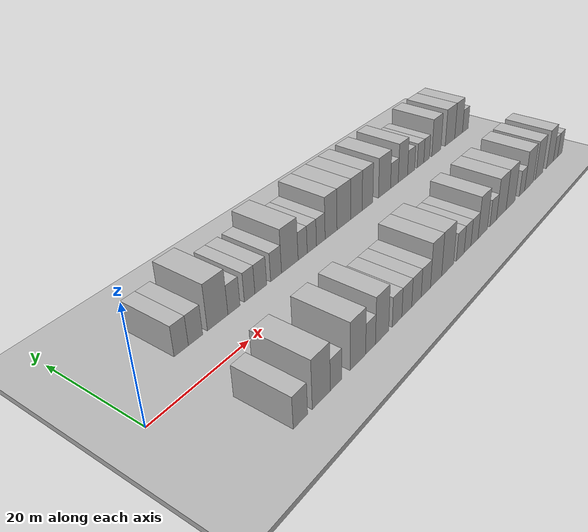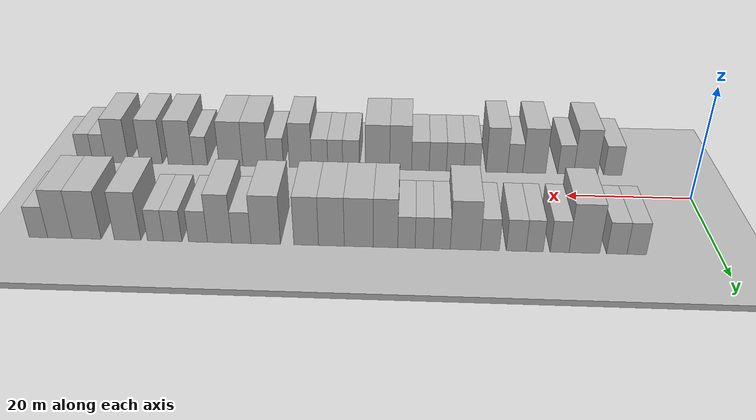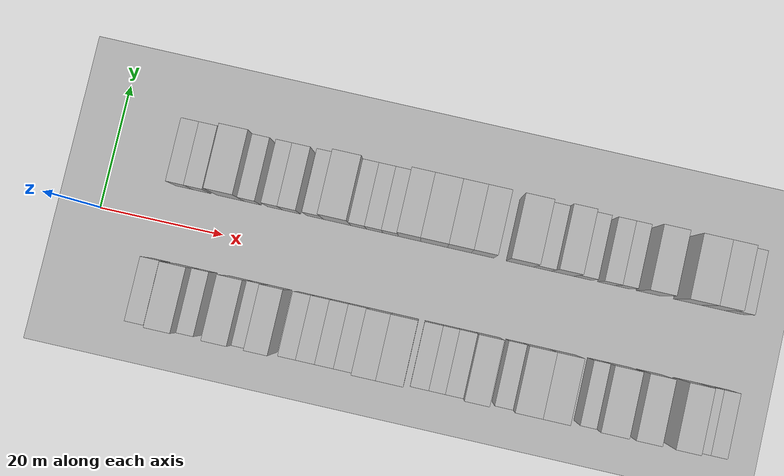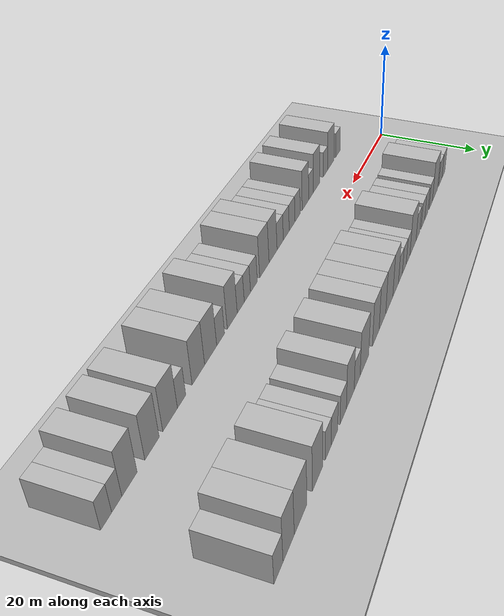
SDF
<sdf version="1.6">
 <world name="default">
  <include><name>ground_plane_1</name><uri>model://HANNAS_ground_plane</uri></include>
  <include>
   <name>ground_plane_2</name>
   <uri>model://HANNAS_ground_plane</uri>
   <pose>100 0 0  0 0 0</pose>
  </include>
  <model name="building_1">
   <static>1</static>
   <pose>12.4091 11.0000 0 0.000000 0.000000 1.570796</pose>
   <link name="link">
    <pose>0 0 3.00 0 0 0</pose>
    <collision name="collision"><geometry><box><size>10.0000 2.8182 6.0000</size></box></geometry></collision>
    <visual name="visual">
     <cast_shadows>0</cast_shadows>
     <geometry><box><size>10.0000 2.8182 6.0000</size></box></geometry>
     <material>
      <script>
       <uri>model://HANNAS_wall/materials/scripts</uri>
       <uri>model://HANNAS_wall/materials/textures</uri>
       <name>vrc/HANNAS_wall</name>
      </script>
     </material>
    </visual>
   </link>
  </model>
  <model name="building_2">
   <static>1</static>
   <pose>15.2784 11.0000 0 0.000000 0.000000 1.570796</pose>
   <link name="link">
    <pose>0 0 3.00 0 0 0</pose>
    <collision name="collision"><geometry><box><size>10.0000 2.9203 6.0000</size></box></geometry></collision>
    <visual name="visual">
     <cast_shadows>0</cast_shadows>
     <geometry><box><size>10.0000 2.9203 6.0000</size></box></geometry>
     <material>
      <script>
       <uri>model://HANNAS_wall/materials/scripts</uri>
       <uri>model://HANNAS_wall/materials/textures</uri>
       <name>vrc/HANNAS_wall</name>
      </script>
     </material>
    </visual>
   </link>
  </model>
  <model name="building_3">
   <static>1</static>
   <pose>19.9652 11.0000 0 0.000000 0.000000 1.570796</pose>
   <link name="link">
    <pose>0 0 4.50 0 0 0</pose>
    <collision name="collision"><geometry><box><size>10.0000 4.4532 9.0000</size></box></geometry></collision>
    <visual name="visual">
     <cast_shadows>0</cast_shadows>
     <geometry><box><size>10.0000 4.4532 9.0000</size></box></geometry>
     <material>
      <script>
       <uri>model://HANNAS_wall/materials/scripts</uri>
       <uri>model://HANNAS_wall/materials/textures</uri>
       <name>vrc/HANNAS_wall</name>
      </script>
     </material>
    </visual>
   </link>
  </model>
  <model name="building_4">
   <static>1</static>
   <pose>23.5626 11.0000 0 0.000000 0.000000 1.570796</pose>
   <link name="link">
    <pose>0 0 3.00 0 0 0</pose>
    <collision name="collision"><geometry><box><size>10.0000 2.7417 6.0000</size></box></geometry></collision>
    <visual name="visual">
     <cast_shadows>0</cast_shadows>
     <geometry><box><size>10.0000 2.7417 6.0000</size></box></geometry>
     <material>
      <script>
       <uri>model://HANNAS_wall/materials/scripts</uri>
       <uri>model://HANNAS_wall/materials/textures</uri>
       <name>vrc/HANNAS_wall</name>
      </script>
     </material>
    </visual>
   </link>
  </model>
  <model name="building_5">
   <static>1</static>
   <pose>27.1903 11.0000 0 0.000000 0.000000 1.570796</pose>
   <link name="link">
    <pose>0 0 3.00 0 0 0</pose>
    <collision name="collision"><geometry><box><size>10.0000 2.5137 6.0000</size></box></geometry></collision>
    <visual name="visual">
     <cast_shadows>0</cast_shadows>
     <geometry><box><size>10.0000 2.5137 6.0000</size></box></geometry>
     <material>
      <script>
       <uri>model://HANNAS_wall/materials/scripts</uri>
       <uri>model://HANNAS_wall/materials/textures</uri>
       <name>vrc/HANNAS_wall</name>
      </script>
     </material>
    </visual>
   </link>
  </model>
  <model name="building_6">
   <static>1</static>
   <pose>29.8882 11.0000 0 0.000000 0.000000 1.570796</pose>
   <link name="link">
    <pose>0 0 3.00 0 0 0</pose>
    <collision name="collision"><geometry><box><size>10.0000 2.8821 6.0000</size></box></geometry></collision>
    <visual name="visual">
     <cast_shadows>0</cast_shadows>
     <geometry><box><size>10.0000 2.8821 6.0000</size></box></geometry>
     <material>
      <script>
       <uri>model://HANNAS_wall/materials/scripts</uri>
       <uri>model://HANNAS_wall/materials/textures</uri>
       <name>vrc/HANNAS_wall</name>
      </script>
     </material>
    </visual>
   </link>
  </model>
  <model name="building_7">
   <static>1</static>
   <pose>33.7209 11.0000 0 0.000000 0.000000 1.570796</pose>
   <link name="link">
    <pose>0 0 3.00 0 0 0</pose>
    <collision name="collision"><geometry><box><size>10.0000 2.7834 6.0000</size></box></geometry></collision>
    <visual name="visual">
     <cast_shadows>0</cast_shadows>
     <geometry><box><size>10.0000 2.7834 6.0000</size></box></geometry>
     <material>
      <script>
       <uri>model://HANNAS_wall/materials/scripts</uri>
       <uri>model://HANNAS_wall/materials/textures</uri>
       <name>vrc/HANNAS_wall</name>
      </script>
     </material>
    </visual>
   </link>
  </model>
  <model name="building_8">
   <static>1</static>
   <pose>37.3267 11.0000 0 0.000000 0.000000 1.570796</pose>
   <link name="link">
    <pose>0 0 4.50 0 0 0</pose>
    <collision name="collision"><geometry><box><size>10.0000 4.4282 9.0000</size></box></geometry></collision>
    <visual name="visual">
     <cast_shadows>0</cast_shadows>
     <geometry><box><size>10.0000 4.4282 9.0000</size></box></geometry>
     <material>
      <script>
       <uri>model://HANNAS_wall/materials/scripts</uri>
       <uri>model://HANNAS_wall/materials/textures</uri>
       <name>vrc/HANNAS_wall</name>
      </script>
     </material>
    </visual>
   </link>
  </model>
  <model name="building_9">
   <static>1</static>
   <pose>40.8081 11.0000 0 0.000000 0.000000 1.570796</pose>
   <link name="link">
    <pose>0 0 3.00 0 0 0</pose>
    <collision name="collision"><geometry><box><size>10.0000 2.5346 6.0000</size></box></geometry></collision>
    <visual name="visual">
     <cast_shadows>0</cast_shadows>
     <geometry><box><size>10.0000 2.5346 6.0000</size></box></geometry>
     <material>
      <script>
       <uri>model://HANNAS_wall/materials/scripts</uri>
       <uri>model://HANNAS_wall/materials/textures</uri>
       <name>vrc/HANNAS_wall</name>
      </script>
     </material>
    </visual>
   </link>
  </model>
  <model name="building_10">
   <static>1</static>
   <pose>43.3943 11.0000 0 0.000000 0.000000 1.570796</pose>
   <link name="link">
    <pose>0 0 3.00 0 0 0</pose>
    <collision name="collision"><geometry><box><size>10.0000 2.6378 6.0000</size></box></geometry></collision>
    <visual name="visual">
     <cast_shadows>0</cast_shadows>
     <geometry><box><size>10.0000 2.6378 6.0000</size></box></geometry>
     <material>
      <script>
       <uri>model://HANNAS_wall/materials/scripts</uri>
       <uri>model://HANNAS_wall/materials/textures</uri>
       <name>vrc/HANNAS_wall</name>
      </script>
     </material>
    </visual>
   </link>
  </model>
  <model name="building_11">
   <static>1</static>
   <pose>45.9849 11.0000 0 0.000000 0.000000 1.570796</pose>
   <link name="link">
    <pose>0 0 3.00 0 0 0</pose>
    <collision name="collision"><geometry><box><size>10.0000 2.5434 6.0000</size></box></geometry></collision>
    <visual name="visual">
     <cast_shadows>0</cast_shadows>
     <geometry><box><size>10.0000 2.5434 6.0000</size></box></geometry>
     <material>
      <script>
       <uri>model://HANNAS_wall/materials/scripts</uri>
       <uri>model://HANNAS_wall/materials/textures</uri>
       <name>vrc/HANNAS_wall</name>
      </script>
     </material>
    </visual>
   </link>
  </model>
  <model name="building_12">
   <static>1</static>
   <pose>49.0629 11.0000 0 0.000000 0.000000 1.570796</pose>
   <link name="link">
    <pose>0 0 4.50 0 0 0</pose>
    <collision name="collision"><geometry><box><size>10.0000 3.6127 9.0000</size></box></geometry></collision>
    <visual name="visual">
     <cast_shadows>0</cast_shadows>
     <geometry><box><size>10.0000 3.6127 9.0000</size></box></geometry>
     <material>
      <script>
       <uri>model://HANNAS_wall/materials/scripts</uri>
       <uri>model://HANNAS_wall/materials/textures</uri>
       <name>vrc/HANNAS_wall</name>
      </script>
     </material>
    </visual>
   </link>
  </model>
  <model name="building_13">
   <static>1</static>
   <pose>53.0228 11.0000 0 0.000000 0.000000 1.570796</pose>
   <link name="link">
    <pose>0 0 4.50 0 0 0</pose>
    <collision name="collision"><geometry><box><size>10.0000 4.3072 9.0000</size></box></geometry></collision>
    <visual name="visual">
     <cast_shadows>0</cast_shadows>
     <geometry><box><size>10.0000 4.3072 9.0000</size></box></geometry>
     <material>
      <script>
       <uri>model://HANNAS_wall/materials/scripts</uri>
       <uri>model://HANNAS_wall/materials/textures</uri>
       <name>vrc/HANNAS_wall</name>
      </script>
     </material>
    </visual>
   </link>
  </model>
  <model name="building_14">
   <static>1</static>
   <pose>57.0884 11.0000 0 0.000000 0.000000 1.570796</pose>
   <link name="link">
    <pose>0 0 4.50 0 0 0</pose>
    <collision name="collision"><geometry><box><size>10.0000 3.8240 9.0000</size></box></geometry></collision>
    <visual name="visual">
     <cast_shadows>0</cast_shadows>
     <geometry><box><size>10.0000 3.8240 9.0000</size></box></geometry>
     <material>
      <script>
       <uri>model://HANNAS_wall/materials/scripts</uri>
       <uri>model://HANNAS_wall/materials/textures</uri>
       <name>vrc/HANNAS_wall</name>
      </script>
     </material>
    </visual>
   </link>
  </model>
  <model name="building_15">
   <static>1</static>
   <pose>60.8358 11.0000 0 0.000000 0.000000 1.570796</pose>
   <link name="link">
    <pose>0 0 4.50 0 0 0</pose>
    <collision name="collision"><geometry><box><size>10.0000 3.6707 9.0000</size></box></geometry></collision>
    <visual name="visual">
     <cast_shadows>0</cast_shadows>
     <geometry><box><size>10.0000 3.6707 9.0000</size></box></geometry>
     <material>
      <script>
       <uri>model://HANNAS_wall/materials/scripts</uri>
       <uri>model://HANNAS_wall/materials/textures</uri>
       <name>vrc/HANNAS_wall</name>
      </script>
     </material>
    </visual>
   </link>
  </model>
  <model name="building_16">
   <static>1</static>
   <pose>66.8701 11.0000 0 0.000000 0.000000 1.570796</pose>
   <link name="link">
    <pose>0 0 4.50 0 0 0</pose>
    <collision name="collision"><geometry><box><size>10.0000 4.3979 9.0000</size></box></geometry></collision>
    <visual name="visual">
     <cast_shadows>0</cast_shadows>
     <geometry><box><size>10.0000 4.3979 9.0000</size></box></geometry>
     <material>
      <script>
       <uri>model://HANNAS_wall/materials/scripts</uri>
       <uri>model://HANNAS_wall/materials/textures</uri>
       <name>vrc/HANNAS_wall</name>
      </script>
     </material>
    </visual>
   </link>
  </model>
  <model name="building_17">
   <static>1</static>
   <pose>70.5187 11.0000 0 0.000000 0.000000 1.570796</pose>
   <link name="link">
    <pose>0 0 3.00 0 0 0</pose>
    <collision name="collision"><geometry><box><size>10.0000 2.8995 6.0000</size></box></geometry></collision>
    <visual name="visual">
     <cast_shadows>0</cast_shadows>
     <geometry><box><size>10.0000 2.8995 6.0000</size></box></geometry>
     <material>
      <script>
       <uri>model://HANNAS_wall/materials/scripts</uri>
       <uri>model://HANNAS_wall/materials/textures</uri>
       <name>vrc/HANNAS_wall</name>
      </script>
     </material>
    </visual>
   </link>
  </model>
  <model name="building_18">
   <static>1</static>
   <pose>73.7836 11.0000 0 0.000000 0.000000 1.570796</pose>
   <link name="link">
    <pose>0 0 4.50 0 0 0</pose>
    <collision name="collision"><geometry><box><size>10.0000 3.6303 9.0000</size></box></geometry></collision>
    <visual name="visual">
     <cast_shadows>0</cast_shadows>
     <geometry><box><size>10.0000 3.6303 9.0000</size></box></geometry>
     <material>
      <script>
       <uri>model://HANNAS_wall/materials/scripts</uri>
       <uri>model://HANNAS_wall/materials/textures</uri>
       <name>vrc/HANNAS_wall</name>
      </script>
     </material>
    </visual>
   </link>
  </model>
  <model name="building_19">
   <static>1</static>
   <pose>77.0267 11.0000 0 0.000000 0.000000 1.570796</pose>
   <link name="link">
    <pose>0 0 3.00 0 0 0</pose>
    <collision name="collision"><geometry><box><size>10.0000 2.8559 6.0000</size></box></geometry></collision>
    <visual name="visual">
     <cast_shadows>0</cast_shadows>
     <geometry><box><size>10.0000 2.8559 6.0000</size></box></geometry>
     <material>
      <script>
       <uri>model://HANNAS_wall/materials/scripts</uri>
       <uri>model://HANNAS_wall/materials/textures</uri>
       <name>vrc/HANNAS_wall</name>
      </script>
     </material>
    </visual>
   </link>
  </model>
  <model name="building_20">
   <static>1</static>
   <pose>80.8412 11.0000 0 0.000000 0.000000 1.570796</pose>
   <link name="link">
    <pose>0 0 3.00 0 0 0</pose>
    <collision name="collision"><geometry><box><size>10.0000 2.7729 6.0000</size></box></geometry></collision>
    <visual name="visual">
     <cast_shadows>0</cast_shadows>
     <geometry><box><size>10.0000 2.7729 6.0000</size></box></geometry>
     <material>
      <script>
       <uri>model://HANNAS_wall/materials/scripts</uri>
       <uri>model://HANNAS_wall/materials/textures</uri>
       <name>vrc/HANNAS_wall</name>
      </script>
     </material>
    </visual>
   </link>
  </model>
  <model name="building_21">
   <static>1</static>
   <pose>83.4422 11.0000 0 0.000000 0.000000 1.570796</pose>
   <link name="link">
    <pose>0 0 3.00 0 0 0</pose>
    <collision name="collision"><geometry><box><size>10.0000 2.4292 6.0000</size></box></geometry></collision>
    <visual name="visual">
     <cast_shadows>0</cast_shadows>
     <geometry><box><size>10.0000 2.4292 6.0000</size></box></geometry>
     <material>
      <script>
       <uri>model://HANNAS_wall/materials/scripts</uri>
       <uri>model://HANNAS_wall/materials/textures</uri>
       <name>vrc/HANNAS_wall</name>
      </script>
     </material>
    </visual>
   </link>
  </model>
  <model name="building_22">
   <static>1</static>
   <pose>87.6706 11.0000 0 0.000000 0.000000 1.570796</pose>
   <link name="link">
    <pose>0 0 4.50 0 0 0</pose>
    <collision name="collision"><geometry><box><size>10.0000 4.0277 9.0000</size></box></geometry></collision>
    <visual name="visual">
     <cast_shadows>0</cast_shadows>
     <geometry><box><size>10.0000 4.0277 9.0000</size></box></geometry>
     <material>
      <script>
       <uri>model://HANNAS_wall/materials/scripts</uri>
       <uri>model://HANNAS_wall/materials/textures</uri>
       <name>vrc/HANNAS_wall</name>
      </script>
     </material>
    </visual>
   </link>
  </model>
  <model name="building_23">
   <static>1</static>
   <pose>93.8970 11.0000 0 0.000000 0.000000 1.570796</pose>
   <link name="link">
    <pose>0 0 4.50 0 0 0</pose>
    <collision name="collision"><geometry><box><size>10.0000 4.4251 9.0000</size></box></geometry></collision>
    <visual name="visual">
     <cast_shadows>0</cast_shadows>
     <geometry><box><size>10.0000 4.4251 9.0000</size></box></geometry>
     <material>
      <script>
       <uri>model://HANNAS_wall/materials/scripts</uri>
       <uri>model://HANNAS_wall/materials/textures</uri>
       <name>vrc/HANNAS_wall</name>
      </script>
     </material>
    </visual>
   </link>
  </model>
  <model name="building_24">
   <static>1</static>
   <pose>97.9638 11.0000 0 0.000000 0.000000 1.570796</pose>
   <link name="link">
    <pose>0 0 4.50 0 0 0</pose>
    <collision name="collision"><geometry><box><size>10.0000 3.7085 9.0000</size></box></geometry></collision>
    <visual name="visual">
     <cast_shadows>0</cast_shadows>
     <geometry><box><size>10.0000 3.7085 9.0000</size></box></geometry>
     <material>
      <script>
       <uri>model://HANNAS_wall/materials/scripts</uri>
       <uri>model://HANNAS_wall/materials/textures</uri>
       <name>vrc/HANNAS_wall</name>
      </script>
     </material>
    </visual>
   </link>
  </model>
  <model name="building_25">
   <static>1</static>
   <pose>101.2395 11.0000 0 0.000000 0.000000 1.570796</pose>
   <link name="link">
    <pose>0 0 3.00 0 0 0</pose>
    <collision name="collision"><geometry><box><size>10.0000 2.8429 6.0000</size></box></geometry></collision>
    <visual name="visual">
     <cast_shadows>0</cast_shadows>
     <geometry><box><size>10.0000 2.8429 6.0000</size></box></geometry>
     <material>
      <script>
       <uri>model://HANNAS_wall/materials/scripts</uri>
       <uri>model://HANNAS_wall/materials/textures</uri>
       <name>vrc/HANNAS_wall</name>
      </script>
     </material>
    </visual>
   </link>
  </model>
  <model name="building_51">
   <static>1</static>
   <pose>11.4990 -11.0000 0 0.000000 0.000000 1.570796</pose>
   <link name="link">
    <pose>0 0 3.00 0 0 0</pose>
    <collision name="collision"><geometry><box><size>10.0000 2.9979 6.0000</size></box></geometry></collision>
    <visual name="visual">
     <cast_shadows>0</cast_shadows>
     <geometry><box><size>10.0000 2.9979 6.0000</size></box></geometry>
     <material>
      <script>
       <uri>model://HANNAS_wall/materials/scripts</uri>
       <uri>model://HANNAS_wall/materials/textures</uri>
       <name>vrc/HANNAS_wall</name>
      </script>
     </material>
    </visual>
   </link>
  </model>
  <model name="building_52">
   <static>1</static>
   <pose>16.0169 -11.0000 0 0.000000 0.000000 1.570796</pose>
   <link name="link">
    <pose>0 0 4.50 0 0 0</pose>
    <collision name="collision"><geometry><box><size>10.0000 4.0380 9.0000</size></box></geometry></collision>
    <visual name="visual">
     <cast_shadows>0</cast_shadows>
     <geometry><box><size>10.0000 4.0380 9.0000</size></box></geometry>
     <material>
      <script>
       <uri>model://HANNAS_wall/materials/scripts</uri>
       <uri>model://HANNAS_wall/materials/textures</uri>
       <name>vrc/HANNAS_wall</name>
      </script>
     </material>
    </visual>
   </link>
  </model>
  <model name="building_53">
   <static>1</static>
   <pose>19.3747 -11.0000 0 0.000000 0.000000 1.570796</pose>
   <link name="link">
    <pose>0 0 3.00 0 0 0</pose>
    <collision name="collision"><geometry><box><size>10.0000 2.6776 6.0000</size></box></geometry></collision>
    <visual name="visual">
     <cast_shadows>0</cast_shadows>
     <geometry><box><size>10.0000 2.6776 6.0000</size></box></geometry>
     <material>
      <script>
       <uri>model://HANNAS_wall/materials/scripts</uri>
       <uri>model://HANNAS_wall/materials/textures</uri>
       <name>vrc/HANNAS_wall</name>
      </script>
     </material>
    </visual>
   </link>
  </model>
  <model name="building_54">
   <static>1</static>
   <pose>24.6554 -11.0000 0 0.000000 0.000000 1.570796</pose>
   <link name="link">
    <pose>0 0 4.50 0 0 0</pose>
    <collision name="collision"><geometry><box><size>10.0000 3.8837 9.0000</size></box></geometry></collision>
    <visual name="visual">
     <cast_shadows>0</cast_shadows>
     <geometry><box><size>10.0000 3.8837 9.0000</size></box></geometry>
     <material>
      <script>
       <uri>model://HANNAS_wall/materials/scripts</uri>
       <uri>model://HANNAS_wall/materials/textures</uri>
       <name>vrc/HANNAS_wall</name>
      </script>
     </material>
    </visual>
   </link>
  </model>
  <model name="building_55">
   <static>1</static>
   <pose>27.8798 -11.0000 0 0.000000 0.000000 1.570796</pose>
   <link name="link">
    <pose>0 0 3.00 0 0 0</pose>
    <collision name="collision"><geometry><box><size>10.0000 2.5652 6.0000</size></box></geometry></collision>
    <visual name="visual">
     <cast_shadows>0</cast_shadows>
     <geometry><box><size>10.0000 2.5652 6.0000</size></box></geometry>
     <material>
      <script>
       <uri>model://HANNAS_wall/materials/scripts</uri>
       <uri>model://HANNAS_wall/materials/textures</uri>
       <name>vrc/HANNAS_wall</name>
      </script>
     </material>
    </visual>
   </link>
  </model>
  <model name="building_56">
   <static>1</static>
   <pose>30.9660 -11.0000 0 0.000000 0.000000 1.570796</pose>
   <link name="link">
    <pose>0 0 4.50 0 0 0</pose>
    <collision name="collision"><geometry><box><size>10.0000 3.6073 9.0000</size></box></geometry></collision>
    <visual name="visual">
     <cast_shadows>0</cast_shadows>
     <geometry><box><size>10.0000 3.6073 9.0000</size></box></geometry>
     <material>
      <script>
       <uri>model://HANNAS_wall/materials/scripts</uri>
       <uri>model://HANNAS_wall/materials/textures</uri>
       <name>vrc/HANNAS_wall</name>
      </script>
     </material>
    </visual>
   </link>
  </model>
  <model name="building_57">
   <static>1</static>
   <pose>35.1552 -11.0000 0 0.000000 0.000000 1.570796</pose>
   <link name="link">
    <pose>0 0 3.00 0 0 0</pose>
    <collision name="collision"><geometry><box><size>10.0000 2.7711 6.0000</size></box></geometry></collision>
    <visual name="visual">
     <cast_shadows>0</cast_shadows>
     <geometry><box><size>10.0000 2.7711 6.0000</size></box></geometry>
     <material>
      <script>
       <uri>model://HANNAS_wall/materials/scripts</uri>
       <uri>model://HANNAS_wall/materials/textures</uri>
       <name>vrc/HANNAS_wall</name>
      </script>
     </material>
    </visual>
   </link>
  </model>
  <model name="building_58">
   <static>1</static>
   <pose>38.0108 -11.0000 0 0.000000 0.000000 1.570796</pose>
   <link name="link">
    <pose>0 0 3.00 0 0 0</pose>
    <collision name="collision"><geometry><box><size>10.0000 2.9401 6.0000</size></box></geometry></collision>
    <visual name="visual">
     <cast_shadows>0</cast_shadows>
     <geometry><box><size>10.0000 2.9401 6.0000</size></box></geometry>
     <material>
      <script>
       <uri>model://HANNAS_wall/materials/scripts</uri>
       <uri>model://HANNAS_wall/materials/textures</uri>
       <name>vrc/HANNAS_wall</name>
      </script>
     </material>
    </visual>
   </link>
  </model>
  <model name="building_59">
   <static>1</static>
   <pose>40.9382 -11.0000 0 0.000000 0.000000 1.570796</pose>
   <link name="link">
    <pose>0 0 3.00 0 0 0</pose>
    <collision name="collision"><geometry><box><size>10.0000 2.9147 6.0000</size></box></geometry></collision>
    <visual name="visual">
     <cast_shadows>0</cast_shadows>
     <geometry><box><size>10.0000 2.9147 6.0000</size></box></geometry>
     <material>
      <script>
       <uri>model://HANNAS_wall/materials/scripts</uri>
       <uri>model://HANNAS_wall/materials/textures</uri>
       <name>vrc/HANNAS_wall</name>
      </script>
     </material>
    </visual>
   </link>
  </model>
  <model name="building_60">
   <static>1</static>
   <pose>43.8944 -11.0000 0 0.000000 0.000000 1.570796</pose>
   <link name="link">
    <pose>0 0 3.00 0 0 0</pose>
    <collision name="collision"><geometry><box><size>10.0000 2.9977 6.0000</size></box></geometry></collision>
    <visual name="visual">
     <cast_shadows>0</cast_shadows>
     <geometry><box><size>10.0000 2.9977 6.0000</size></box></geometry>
     <material>
      <script>
       <uri>model://HANNAS_wall/materials/scripts</uri>
       <uri>model://HANNAS_wall/materials/textures</uri>
       <name>vrc/HANNAS_wall</name>
      </script>
     </material>
    </visual>
   </link>
  </model>
  <model name="building_61">
   <static>1</static>
   <pose>47.2454 -11.0000 0 0.000000 0.000000 1.570796</pose>
   <link name="link">
    <pose>0 0 4.50 0 0 0</pose>
    <collision name="collision"><geometry><box><size>10.0000 3.7042 9.0000</size></box></geometry></collision>
    <visual name="visual">
     <cast_shadows>0</cast_shadows>
     <geometry><box><size>10.0000 3.7042 9.0000</size></box></geometry>
     <material>
      <script>
       <uri>model://HANNAS_wall/materials/scripts</uri>
       <uri>model://HANNAS_wall/materials/textures</uri>
       <name>vrc/HANNAS_wall</name>
      </script>
     </material>
    </visual>
   </link>
  </model>
  <model name="building_62">
   <static>1</static>
   <pose>51.1810 -11.0000 0 0.000000 0.000000 1.570796</pose>
   <link name="link">
    <pose>0 0 4.50 0 0 0</pose>
    <collision name="collision"><geometry><box><size>10.0000 4.1671 9.0000</size></box></geometry></collision>
    <visual name="visual">
     <cast_shadows>0</cast_shadows>
     <geometry><box><size>10.0000 4.1671 9.0000</size></box></geometry>
     <material>
      <script>
       <uri>model://HANNAS_wall/materials/scripts</uri>
       <uri>model://HANNAS_wall/materials/textures</uri>
       <name>vrc/HANNAS_wall</name>
      </script>
     </material>
    </visual>
   </link>
  </model>
  <model name="building_63">
   <static>1</static>
   <pose>55.6954 -11.0000 0 0.000000 0.000000 1.570796</pose>
   <link name="link">
    <pose>0 0 3.00 0 0 0</pose>
    <collision name="collision"><geometry><box><size>10.0000 2.8615 6.0000</size></box></geometry></collision>
    <visual name="visual">
     <cast_shadows>0</cast_shadows>
     <geometry><box><size>10.0000 2.8615 6.0000</size></box></geometry>
     <material>
      <script>
       <uri>model://HANNAS_wall/materials/scripts</uri>
       <uri>model://HANNAS_wall/materials/textures</uri>
       <name>vrc/HANNAS_wall</name>
      </script>
     </material>
    </visual>
   </link>
  </model>
  <model name="building_64">
   <static>1</static>
   <pose>58.4050 -11.0000 0 0.000000 0.000000 1.570796</pose>
   <link name="link">
    <pose>0 0 3.00 0 0 0</pose>
    <collision name="collision"><geometry><box><size>10.0000 2.5578 6.0000</size></box></geometry></collision>
    <visual name="visual">
     <cast_shadows>0</cast_shadows>
     <geometry><box><size>10.0000 2.5578 6.0000</size></box></geometry>
     <material>
      <script>
       <uri>model://HANNAS_wall/materials/scripts</uri>
       <uri>model://HANNAS_wall/materials/textures</uri>
       <name>vrc/HANNAS_wall</name>
      </script>
     </material>
    </visual>
   </link>
  </model>
  <model name="building_65">
   <static>1</static>
   <pose>61.0790 -11.0000 0 0.000000 0.000000 1.570796</pose>
   <link name="link">
    <pose>0 0 3.00 0 0 0</pose>
    <collision name="collision"><geometry><box><size>10.0000 2.7903 6.0000</size></box></geometry></collision>
    <visual name="visual">
     <cast_shadows>0</cast_shadows>
     <geometry><box><size>10.0000 2.7903 6.0000</size></box></geometry>
     <material>
      <script>
       <uri>model://HANNAS_wall/materials/scripts</uri>
       <uri>model://HANNAS_wall/materials/textures</uri>
       <name>vrc/HANNAS_wall</name>
      </script>
     </material>
    </visual>
   </link>
  </model>
  <model name="building_66">
   <static>1</static>
   <pose>64.3800 -11.0000 0 0.000000 0.000000 1.570796</pose>
   <link name="link">
    <pose>0 0 4.50 0 0 0</pose>
    <collision name="collision"><geometry><box><size>10.0000 3.8116 9.0000</size></box></geometry></collision>
    <visual name="visual">
     <cast_shadows>0</cast_shadows>
     <geometry><box><size>10.0000 3.8116 9.0000</size></box></geometry>
     <material>
      <script>
       <uri>model://HANNAS_wall/materials/scripts</uri>
       <uri>model://HANNAS_wall/materials/textures</uri>
       <name>vrc/HANNAS_wall</name>
      </script>
     </material>
    </visual>
   </link>
  </model>
  <model name="building_67">
   <static>1</static>
   <pose>68.6975 -11.0000 0 0.000000 0.000000 1.570796</pose>
   <link name="link">
    <pose>0 0 3.00 0 0 0</pose>
    <collision name="collision"><geometry><box><size>10.0000 2.8234 6.0000</size></box></geometry></collision>
    <visual name="visual">
     <cast_shadows>0</cast_shadows>
     <geometry><box><size>10.0000 2.8234 6.0000</size></box></geometry>
     <material>
      <script>
       <uri>model://HANNAS_wall/materials/scripts</uri>
       <uri>model://HANNAS_wall/materials/textures</uri>
       <name>vrc/HANNAS_wall</name>
      </script>
     </material>
    </visual>
   </link>
  </model>
  <model name="building_68">
   <static>1</static>
   <pose>72.1998 -11.0000 0 0.000000 0.000000 1.570796</pose>
   <link name="link">
    <pose>0 0 4.50 0 0 0</pose>
    <collision name="collision"><geometry><box><size>10.0000 4.1812 9.0000</size></box></geometry></collision>
    <visual name="visual">
     <cast_shadows>0</cast_shadows>
     <geometry><box><size>10.0000 4.1812 9.0000</size></box></geometry>
     <material>
      <script>
       <uri>model://HANNAS_wall/materials/scripts</uri>
       <uri>model://HANNAS_wall/materials/textures</uri>
       <name>vrc/HANNAS_wall</name>
      </script>
     </material>
    </visual>
   </link>
  </model>
  <model name="building_69">
   <static>1</static>
   <pose>76.3527 -11.0000 0 0.000000 0.000000 1.570796</pose>
   <link name="link">
    <pose>0 0 4.50 0 0 0</pose>
    <collision name="collision"><geometry><box><size>10.0000 4.1246 9.0000</size></box></geometry></collision>
    <visual name="visual">
     <cast_shadows>0</cast_shadows>
     <geometry><box><size>10.0000 4.1246 9.0000</size></box></geometry>
     <material>
      <script>
       <uri>model://HANNAS_wall/materials/scripts</uri>
       <uri>model://HANNAS_wall/materials/textures</uri>
       <name>vrc/HANNAS_wall</name>
      </script>
     </material>
    </visual>
   </link>
  </model>
  <model name="building_70">
   <static>1</static>
   <pose>81.6901 -11.0000 0 0.000000 0.000000 1.570796</pose>
   <link name="link">
    <pose>0 0 3.00 0 0 0</pose>
    <collision name="collision"><geometry><box><size>10.0000 2.5503 6.0000</size></box></geometry></collision>
    <visual name="visual">
     <cast_shadows>0</cast_shadows>
     <geometry><box><size>10.0000 2.5503 6.0000</size></box></geometry>
     <material>
      <script>
       <uri>model://HANNAS_wall/materials/scripts</uri>
       <uri>model://HANNAS_wall/materials/textures</uri>
       <name>vrc/HANNAS_wall</name>
      </script>
     </material>
    </visual>
   </link>
  </model>
  <model name="building_71">
   <static>1</static>
   <pose>85.1099 -11.0000 0 0.000000 0.000000 1.570796</pose>
   <link name="link">
    <pose>0 0 4.50 0 0 0</pose>
    <collision name="collision"><geometry><box><size>10.0000 4.2893 9.0000</size></box></geometry></collision>
    <visual name="visual">
     <cast_shadows>0</cast_shadows>
     <geometry><box><size>10.0000 4.2893 9.0000</size></box></geometry>
     <material>
      <script>
       <uri>model://HANNAS_wall/materials/scripts</uri>
       <uri>model://HANNAS_wall/materials/textures</uri>
       <name>vrc/HANNAS_wall</name>
      </script>
     </material>
    </visual>
   </link>
  </model>
  <model name="building_72">
   <static>1</static>
   <pose>90.2159 -11.0000 0 0.000000 0.000000 1.570796</pose>
   <link name="link">
    <pose>0 0 4.50 0 0 0</pose>
    <collision name="collision"><geometry><box><size>10.0000 3.9227 9.0000</size></box></geometry></collision>
    <visual name="visual">
     <cast_shadows>0</cast_shadows>
     <geometry><box><size>10.0000 3.9227 9.0000</size></box></geometry>
     <material>
      <script>
       <uri>model://HANNAS_wall/materials/scripts</uri>
       <uri>model://HANNAS_wall/materials/textures</uri>
       <name>vrc/HANNAS_wall</name>
      </script>
     </material>
    </visual>
   </link>
  </model>
  <model name="building_73">
   <static>1</static>
   <pose>96.0909 -11.0000 0 0.000000 0.000000 1.570796</pose>
   <link name="link">
    <pose>0 0 4.50 0 0 0</pose>
    <collision name="collision"><geometry><box><size>10.0000 3.8274 9.0000</size></box></geometry></collision>
    <visual name="visual">
     <cast_shadows>0</cast_shadows>
     <geometry><box><size>10.0000 3.8274 9.0000</size></box></geometry>
     <material>
      <script>
       <uri>model://HANNAS_wall/materials/scripts</uri>
       <uri>model://HANNAS_wall/materials/textures</uri>
       <name>vrc/HANNAS_wall</name>
      </script>
     </material>
    </visual>
   </link>
  </model>
  <model name="building_74">
   <static>1</static>
   <pose>99.2147 -11.0000 0 0.000000 0.000000 1.570796</pose>
   <link name="link">
    <pose>0 0 3.00 0 0 0</pose>
    <collision name="collision"><geometry><box><size>10.0000 2.4202 6.0000</size></box></geometry></collision>
    <visual name="visual">
     <cast_shadows>0</cast_shadows>
     <geometry><box><size>10.0000 2.4202 6.0000</size></box></geometry>
     <material>
      <script>
       <uri>model://HANNAS_wall/materials/scripts</uri>
       <uri>model://HANNAS_wall/materials/textures</uri>
       <name>vrc/HANNAS_wall</name>
      </script>
     </material>
    </visual>
   </link>
  </model>
  <model name="building_75">
   <static>1</static>
   <pose>101.7085 -11.0000 0 0.000000 0.000000 1.570796</pose>
   <link name="link">
    <pose>0 0 3.00 0 0 0</pose>
    <collision name="collision"><geometry><box><size>10.0000 2.5674 6.0000</size></box></geometry></collision>
    <visual name="visual">
     <cast_shadows>0</cast_shadows>
     <geometry><box><size>10.0000 2.5674 6.0000</size></box></geometry>
     <material>
      <script>
       <uri>model://HANNAS_wall/materials/scripts</uri>
       <uri>model://HANNAS_wall/materials/textures</uri>
       <name>vrc/HANNAS_wall</name>
      </script>
     </material>
    </visual>
   </link>
  </model>
 </world>
</sdf>
